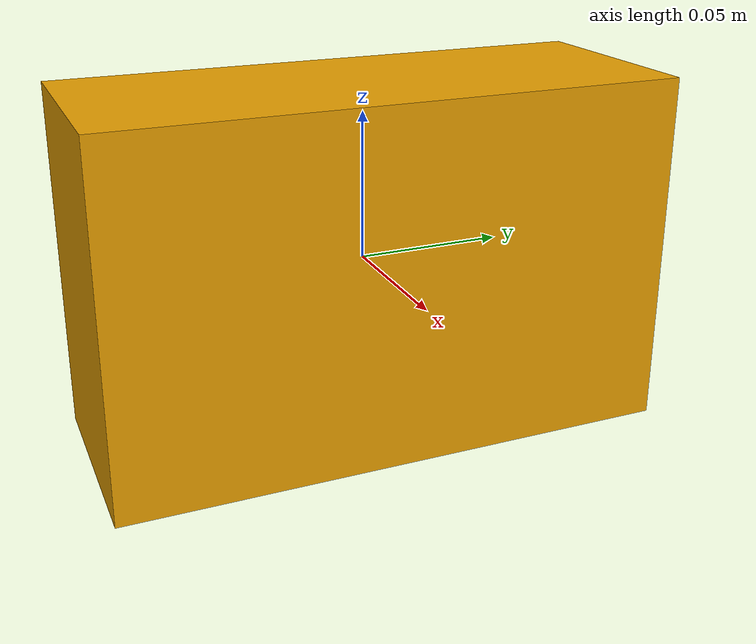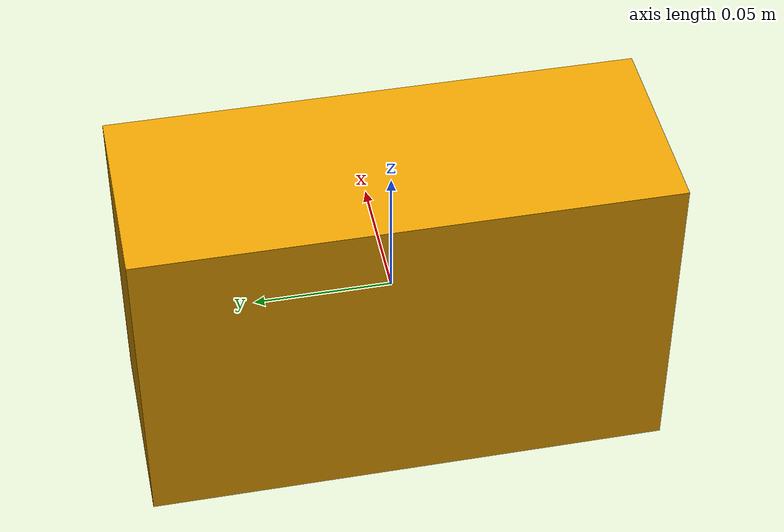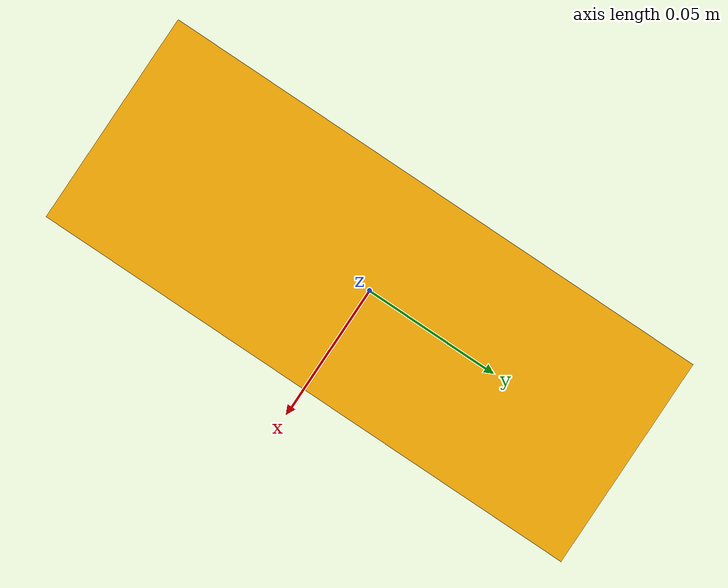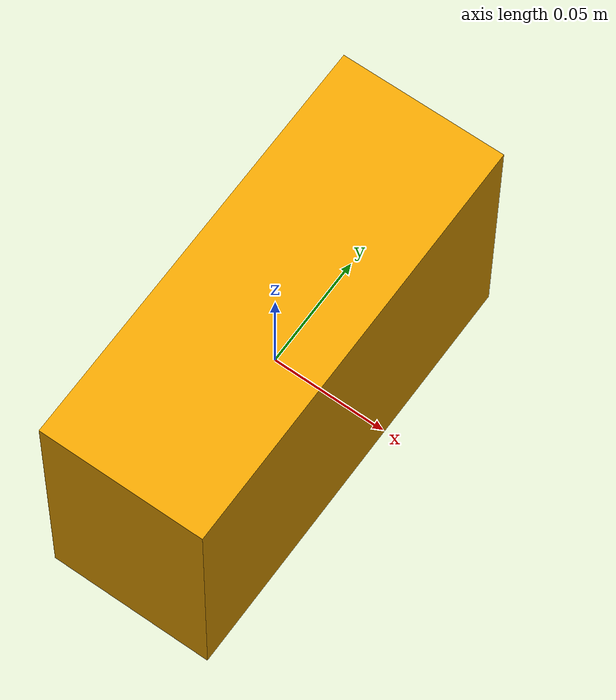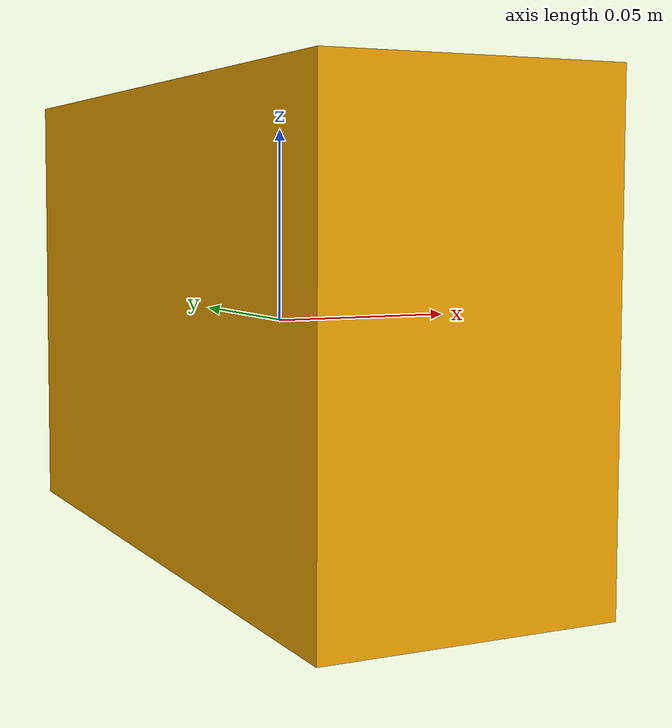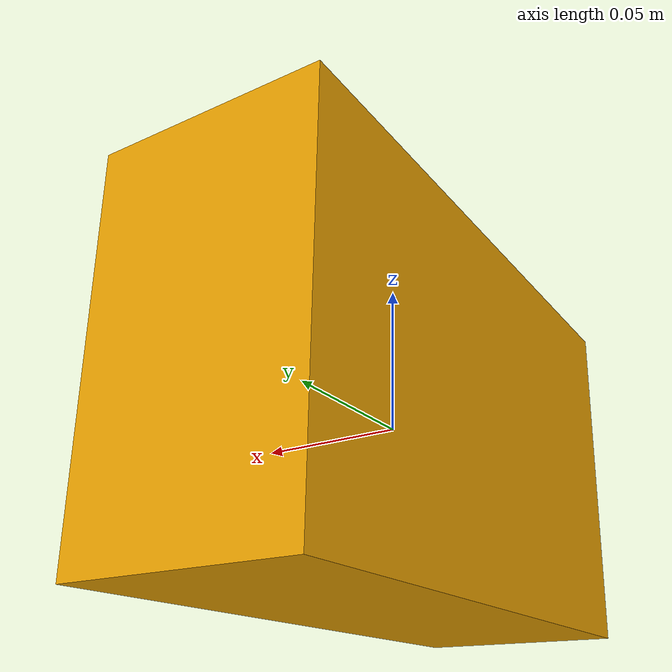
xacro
<?xml version="1.0"?>
<robot xmlns:xacro="http://www.ros.org/wiki/xacro" name="object">
	<xacro:property name="m" value="0.487" />
	<xacro:property name="x" value="0.072898" />
	<xacro:property name="y" value="0.1905" />
	<xacro:property name="z" value="0.12065" />
	<!-- a wall to test the adaptivity   -->
	<link name="object">
		<inertial>
			<mass value="${m}"/>
			<inertia  ixx="${m*(y*y + z*z)/12}" ixy="0.00"  ixz="0.00" iyy="${m*(x*x + z*z)/12}" iyz="0.00" izz="${m*(x*x + y*y)/12}" />
		</inertial>
		<visual>
			<geometry>
				<box size="${x} ${y} ${z}"/>
			</geometry>
		</visual>
		<collision>
			<geometry>
				<box size="${x} ${y} ${z}"/>
			</geometry>
			<surface>
				<friction>
					<ode>
			            <mu>1.2</mu>
			            <mu1>1.2</mu1>
			            <mu2>1.2</mu2>
          			</ode>
        		</friction>
        	</surface>
		</collision>
	</link>

	<gazebo reference="object">
     	<kp>3.19e16</kp>
     	<kd>21125</kd>
        <mu1>1.2</mu1>
		<mu2>1.2</mu2>
	</gazebo>

</robot>
